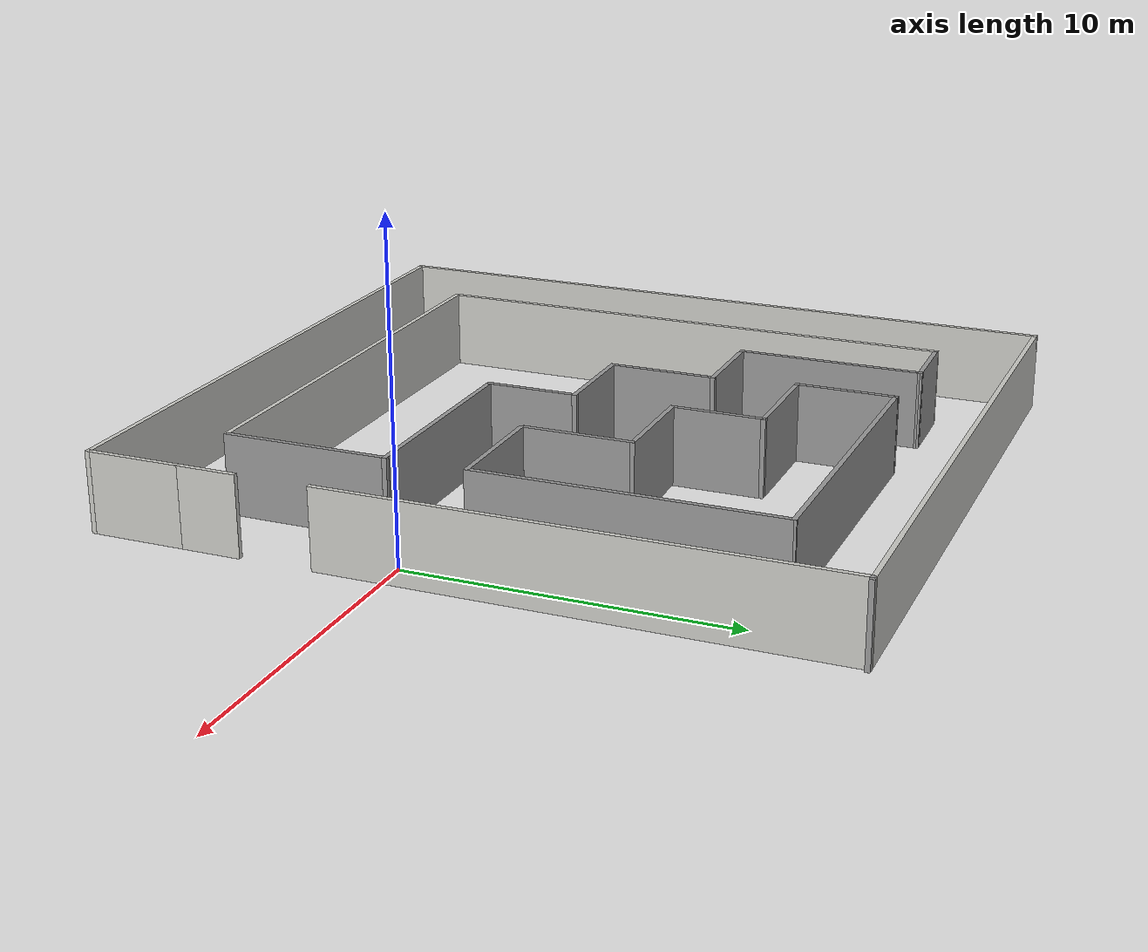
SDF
<?xml version='1.0'?>
<sdf version='1.7'>
  <model name='test1'>
    <pose>-9.33 2.1 0 0 -0 0</pose>
    <link name='Wall_11'>
      <collision name='Wall_11_Collision'>
        <geometry>
          <box>
            <size>15.5 0.15 2.5</size>
          </box>
        </geometry>
        <pose>0 0 1.25 0 -0 0</pose>
      </collision>
      <visual name='Wall_11_Visual'>
        <pose>0 0 1.25 0 -0 0</pose>
        <geometry>
          <box>
            <size>15.5 0.15 2.5</size>
          </box>
        </geometry>
        <material>
          <script>
            <uri>file://media/materials/scripts/gazebo.material</uri>
            <name>Gazebo/CeilingTiled</name>
          </script>
          <ambient>1 1 1 1</ambient>
        </material>
        <meta>
          <layer>0</layer>
        </meta>
      </visual>
      <pose>10.2288 3.47097 0 0 -0 1.5708</pose>
    </link>
    <link name='Wall_13'>
      <collision name='Wall_13_Collision'>
        <geometry>
          <box>
            <size>15.25 0.15 2.5</size>
          </box>
        </geometry>
        <pose>0 0 1.25 0 -0 0</pose>
      </collision>
      <visual name='Wall_13_Visual'>
        <pose>0 0 1.25 0 -0 0</pose>
        <geometry>
          <box>
            <size>15.25 0.15 2.5</size>
          </box>
        </geometry>
        <material>
          <script>
            <uri>file://media/materials/scripts/gazebo.material</uri>
            <name>Gazebo/CeilingTiled</name>
          </script>
          <ambient>1 1 1 1</ambient>
        </material>
        <meta>
          <layer>0</layer>
        </meta>
      </visual>
      <pose>0.040001 -8.45 0 0 -0 3.14159</pose>
    </link>
    <link name='Wall_14'>
      <collision name='Wall_14_Collision'>
        <geometry>
          <box>
            <size>17.25 0.15 2.5</size>
          </box>
        </geometry>
        <pose>0 0 1.25 0 -0 0</pose>
      </collision>
      <visual name='Wall_14_Visual'>
        <pose>0 0 1.25 0 -0 0</pose>
        <geometry>
          <box>
            <size>17.25 0.15 2.5</size>
          </box>
        </geometry>
        <material>
          <script>
            <uri>file://media/materials/scripts/gazebo.material</uri>
            <name>Gazebo/CeilingTiled</name>
          </script>
          <ambient>1 1 1 1</ambient>
        </material>
        <meta>
          <layer>0</layer>
        </meta>
      </visual>
      <pose>-7.51 0.100001 0 0 -0 1.5708</pose>
    </link>
    <link name='Wall_17'>
      <collision name='Wall_17_Collision'>
        <geometry>
          <box>
            <size>3 0.15 2.5</size>
          </box>
        </geometry>
        <pose>0 0 1.25 0 -0 0</pose>
      </collision>
      <visual name='Wall_17_Visual'>
        <pose>0 0 1.25 0 -0 0</pose>
        <geometry>
          <box>
            <size>3 0.15 2.5</size>
          </box>
        </geometry>
        <material>
          <script>
            <uri>file://media/materials/scripts/gazebo.material</uri>
            <name>Gazebo/CeilingTiled</name>
          </script>
          <ambient>1 1 1 1</ambient>
        </material>
        <meta>
          <layer>0</layer>
        </meta>
      </visual>
      <pose>10.25 -9.875 0 0 -0 -1.5708</pose>
    </link>
    <link name='Wall_18'>
      <collision name='Wall_18_Collision'>
        <geometry>
          <box>
            <size>20.75 0.15 2.5</size>
          </box>
        </geometry>
        <pose>0 0 1.25 0 -0 0</pose>
      </collision>
      <visual name='Wall_18_Visual'>
        <pose>0 0 1.25 0 -0 0</pose>
        <geometry>
          <box>
            <size>20.75 0.15 2.5</size>
          </box>
        </geometry>
        <material>
          <script>
            <uri>file://media/materials/scripts/gazebo.material</uri>
            <name>Gazebo/CeilingTiled</name>
          </script>
          <ambient>1 1 1 1</ambient>
        </material>
        <meta>
          <layer>0</layer>
        </meta>
      </visual>
      <pose>-0.05 -11.3 0 0 -0 3.14159</pose>
    </link>
    <link name='Wall_19'>
      <collision name='Wall_19_Collision'>
        <geometry>
          <box>
            <size>22.75 0.15 2.5</size>
          </box>
        </geometry>
        <pose>0 0 1.25 0 -0 0</pose>
      </collision>
      <visual name='Wall_19_Visual'>
        <pose>0 0 1.25 0 -0 0</pose>
        <geometry>
          <box>
            <size>22.75 0.15 2.5</size>
          </box>
        </geometry>
        <material>
          <script>
            <uri>file://media/materials/scripts/gazebo.material</uri>
            <name>Gazebo/CeilingTiled</name>
          </script>
          <ambient>1 1 1 1</ambient>
        </material>
        <meta>
          <layer>0</layer>
        </meta>
      </visual>
      <pose>-10.35 0 0 0 -0 1.5708</pose>
    </link>
    <link name='Wall_20'>
      <collision name='Wall_20_Collision'>
        <geometry>
          <box>
            <size>20.6399 0.15 2.5</size>
          </box>
        </geometry>
        <pose>0 0 1.25 0 -0 0</pose>
      </collision>
      <visual name='Wall_20_Visual'>
        <pose>0 0 1.25 0 -0 0</pose>
        <geometry>
          <box>
            <size>20.6399 0.15 2.5</size>
          </box>
        </geometry>
        <material>
          <script>
            <uri>file://media/materials/scripts/gazebo.material</uri>
            <name>Gazebo/CeilingTiled</name>
          </script>
          <ambient>1 1 1 1</ambient>
        </material>
        <meta>
          <layer>0</layer>
        </meta>
      </visual>
      <pose>-0.105039 11.3 0 0 -0 0</pose>
    </link>
    <link name='Wall_22'>
      <collision name='Wall_22_Collision'>
        <geometry>
          <box>
            <size>0.15 0.15 2.5</size>
          </box>
        </geometry>
        <pose>0 0 1.25 0 -0 0</pose>
      </collision>
      <visual name='Wall_22_Visual'>
        <pose>0 0 1.25 0 -0 0</pose>
        <geometry>
          <box>
            <size>0.15 0.15 2.5</size>
          </box>
        </geometry>
        <material>
          <script>
            <uri>file://media/materials/scripts/gazebo.material</uri>
            <name>Gazebo/Grey</name>
          </script>
          <ambient>1 1 1 1</ambient>
        </material>
        <meta>
          <layer>0</layer>
        </meta>
      </visual>
      <pose>10.2365 11.2741 0 0 -0 0</pose>
    </link>
    <link name='Wall_25'>
      <collision name='Wall_25_Collision'>
        <geometry>
          <box>
            <size>0.15 0.15 2.5</size>
          </box>
        </geometry>
        <pose>0 0 1.25 0 -0 0</pose>
      </collision>
      <visual name='Wall_25_Visual'>
        <pose>0 0 1.25 0 -0 0</pose>
        <geometry>
          <box>
            <size>0.15 0.15 2.5</size>
          </box>
        </geometry>
        <material>
          <script>
            <uri>file://media/materials/scripts/gazebo.material</uri>
            <name>Gazebo/Grey</name>
          </script>
          <ambient>1 1 1 1</ambient>
        </material>
        <meta>
          <layer>0</layer>
        </meta>
      </visual>
      <pose>10.35 11.3 0 0 -0 0</pose>
    </link>
    <link name='Wall_29'>
      <collision name='Wall_29_Collision'>
        <geometry>
          <box>
            <size>3.75 0.15 2.5</size>
          </box>
        </geometry>
        <pose>0 0 1.25 0 -0 0</pose>
      </collision>
      <visual name='Wall_29_Visual'>
        <pose>0 0 1.25 0 -0 0</pose>
        <geometry>
          <box>
            <size>3.75 0.15 2.5</size>
          </box>
        </geometry>
        <material>
          <script>
            <uri>file://media/materials/scripts/gazebo.material</uri>
            <name>Gazebo/Grey</name>
          </script>
          <ambient>1 1 1 1</ambient>
        </material>
        <meta>
          <layer>0</layer>
        </meta>
      </visual>
      <pose>5.73683 -0.855208 0 0 -0 0</pose>
    </link>
    <link name='Wall_31'>
      <collision name='Wall_31_Collision'>
        <geometry>
          <box>
            <size>3.5 0.15 2.5</size>
          </box>
        </geometry>
        <pose>0 0 1.25 0 -0 0</pose>
      </collision>
      <visual name='Wall_31_Visual'>
        <pose>0 0 1.25 0 -0 0</pose>
        <geometry>
          <box>
            <size>3.5 0.15 2.5</size>
          </box>
        </geometry>
        <material>
          <script>
            <uri>file://media/materials/scripts/gazebo.material</uri>
            <name>Gazebo/Grey</name>
          </script>
          <ambient>1 1 1 1</ambient>
        </material>
        <meta>
          <layer>0</layer>
        </meta>
      </visual>
      <pose>3.86274 0.911582 0 0 -0 1.5708</pose>
    </link>
    <link name='Wall_32'>
      <collision name='Wall_32_Collision'>
        <geometry>
          <box>
            <size>3.38175 0.15 2.5</size>
          </box>
        </geometry>
        <pose>0 0 1.25 0 -0 0</pose>
      </collision>
      <visual name='Wall_32_Visual'>
        <pose>0 0 1.25 0 -0 0</pose>
        <geometry>
          <box>
            <size>3.38175 0.15 2.5</size>
          </box>
        </geometry>
        <material>
          <script>
            <uri>file://media/materials/scripts/gazebo.material</uri>
            <name>Gazebo/Grey</name>
          </script>
          <ambient>1 1 1 1</ambient>
        </material>
        <meta>
          <layer>0</layer>
        </meta>
      </visual>
      <pose>2.24692 2.59973 0 0 -0 3.14159</pose>
    </link>
    <link name='Wall_33'>
      <collision name='Wall_33_Collision'>
        <geometry>
          <box>
            <size>3 0.15 2.5</size>
          </box>
        </geometry>
        <pose>0 0 1.25 0 -0 0</pose>
      </collision>
      <visual name='Wall_33_Visual'>
        <pose>0 0 1.25 0 -0 0</pose>
        <geometry>
          <box>
            <size>3 0.15 2.5</size>
          </box>
        </geometry>
        <material>
          <script>
            <uri>file://media/materials/scripts/gazebo.material</uri>
            <name>Gazebo/Grey</name>
          </script>
          <ambient>1 1 1 1</ambient>
        </material>
        <meta>
          <layer>0</layer>
        </meta>
      </visual>
      <pose>0.631094 4.02473 0 0 -0 1.5708</pose>
    </link>
    <link name='Wall_34'>
      <collision name='Wall_34_Collision'>
        <geometry>
          <box>
            <size>3.5 0.15 2.5</size>
          </box>
        </geometry>
        <pose>0 0 1.25 0 -0 0</pose>
      </collision>
      <visual name='Wall_34_Visual'>
        <pose>0 0 1.25 0 -0 0</pose>
        <geometry>
          <box>
            <size>3.5 0.15 2.5</size>
          </box>
        </geometry>
        <material>
          <script>
            <uri>file://media/materials/scripts/gazebo.material</uri>
            <name>Gazebo/Grey</name>
          </script>
          <ambient>1 1 1 1</ambient>
        </material>
        <meta>
          <layer>0</layer>
        </meta>
      </visual>
      <pose>-1.04391 5.44973 0 0 -0 3.14159</pose>
    </link>
    <link name='Wall_35'>
      <collision name='Wall_35_Collision'>
        <geometry>
          <box>
            <size>3.25 0.15 2.5</size>
          </box>
        </geometry>
        <pose>0 0 1.25 0 -0 0</pose>
      </collision>
      <visual name='Wall_35_Visual'>
        <pose>0 0 1.25 0 -0 0</pose>
        <geometry>
          <box>
            <size>3.25 0.15 2.5</size>
          </box>
        </geometry>
        <material>
          <script>
            <uri>file://media/materials/scripts/gazebo.material</uri>
            <name>Gazebo/Grey</name>
          </script>
          <ambient>1 1 1 1</ambient>
        </material>
        <meta>
          <layer>0</layer>
        </meta>
      </visual>
      <pose>-2.71891 6.99973 0 0 -0 1.5708</pose>
    </link>
    <link name='Wall_37'>
      <collision name='Wall_37_Collision'>
        <geometry>
          <box>
            <size>9.5 0.15 2.5</size>
          </box>
        </geometry>
        <pose>0 0 1.25 0 -0 0</pose>
      </collision>
      <visual name='Wall_37_Visual'>
        <pose>0 0 1.25 0 -0 0</pose>
        <geometry>
          <box>
            <size>9.5 0.15 2.5</size>
          </box>
        </geometry>
        <material>
          <script>
            <uri>file://media/materials/scripts/gazebo.material</uri>
            <name>Gazebo/Grey</name>
          </script>
          <ambient>1 1 1 1</ambient>
        </material>
        <meta>
          <layer>0</layer>
        </meta>
      </visual>
      <pose>7.53683 3.81979 0 0 -0 1.5708</pose>
    </link>
    <link name='Wall_39'>
      <collision name='Wall_39_Collision'>
        <geometry>
          <box>
            <size>5.25 0.15 2.5</size>
          </box>
        </geometry>
        <pose>0 0 1.25 0 -0 0</pose>
      </collision>
      <visual name='Wall_39_Visual'>
        <pose>0 0 1.25 0 -0 0</pose>
        <geometry>
          <box>
            <size>5.25 0.15 2.5</size>
          </box>
        </geometry>
        <material>
          <script>
            <uri>file://media/materials/scripts/gazebo.material</uri>
            <name>Gazebo/Grey</name>
          </script>
          <ambient>1 1 1 1</ambient>
        </material>
        <meta>
          <layer>0</layer>
        </meta>
      </visual>
      <pose>7.59 -5.9 0 0 -0 1.5708</pose>
    </link>
    <link name='Wall_4'>
      <collision name='Wall_4_Collision'>
        <geometry>
          <box>
            <size>2 0.15 2.5</size>
          </box>
        </geometry>
        <pose>0 0 1.25 0 -0 0</pose>
      </collision>
      <visual name='Wall_4_Visual'>
        <pose>0 0 1.25 0 -0 0</pose>
        <geometry>
          <box>
            <size>2 0.15 2.5</size>
          </box>
        </geometry>
        <material>
          <script>
            <uri>file://media/materials/scripts/gazebo.material</uri>
            <name>Gazebo/CeilingTiled</name>
          </script>
          <ambient>1 1 1 1</ambient>
        </material>
        <meta>
          <layer>0</layer>
        </meta>
      </visual>
      <pose>10.25 -7.525 0 0 -0 -1.5708</pose>
    </link>
    <link name='Wall_40'>
      <collision name='Wall_40_Collision'>
        <geometry>
          <box>
            <size>7 0.15 2.5</size>
          </box>
        </geometry>
        <pose>0 0 1.25 0 -0 0</pose>
      </collision>
      <visual name='Wall_40_Visual'>
        <pose>0 0 1.25 0 -0 0</pose>
        <geometry>
          <box>
            <size>7 0.15 2.5</size>
          </box>
        </geometry>
        <material>
          <script>
            <uri>file://media/materials/scripts/gazebo.material</uri>
            <name>Gazebo/Grey</name>
          </script>
          <ambient>1 1 1 1</ambient>
        </material>
        <meta>
          <layer>0</layer>
        </meta>
      </visual>
      <pose>4.165 -3.35 0 0 -0 3.14159</pose>
    </link>
    <link name='Wall_41'>
      <collision name='Wall_41_Collision'>
        <geometry>
          <box>
            <size>3 0.15 2.5</size>
          </box>
        </geometry>
        <pose>0 0 1.25 0 -0 0</pose>
      </collision>
      <visual name='Wall_41_Visual'>
        <pose>0 0 1.25 0 -0 0</pose>
        <geometry>
          <box>
            <size>3 0.15 2.5</size>
          </box>
        </geometry>
        <material>
          <script>
            <uri>file://media/materials/scripts/gazebo.material</uri>
            <name>Gazebo/Grey</name>
          </script>
          <ambient>1 1 1 1</ambient>
        </material>
        <meta>
          <layer>0</layer>
        </meta>
      </visual>
      <pose>0.74 -1.925 0 0 -0 1.5708</pose>
    </link>
    <link name='Wall_42'>
      <collision name='Wall_42_Collision'>
        <geometry>
          <box>
            <size>3.25 0.15 2.5</size>
          </box>
        </geometry>
        <pose>0 0 1.25 0 -0 0</pose>
      </collision>
      <visual name='Wall_42_Visual'>
        <pose>0 0 1.25 0 -0 0</pose>
        <geometry>
          <box>
            <size>3.25 0.15 2.5</size>
          </box>
        </geometry>
        <material>
          <script>
            <uri>file://media/materials/scripts/gazebo.material</uri>
            <name>Gazebo/Grey</name>
          </script>
          <ambient>1 1 1 1</ambient>
        </material>
        <meta>
          <layer>0</layer>
        </meta>
      </visual>
      <pose>-0.81 -0.499999 0 0 -0 3.14159</pose>
    </link>
    <link name='Wall_43'>
      <collision name='Wall_43_Collision'>
        <geometry>
          <box>
            <size>3.5 0.15 2.5</size>
          </box>
        </geometry>
        <pose>0 0 1.25 0 -0 0</pose>
      </collision>
      <visual name='Wall_43_Visual'>
        <pose>0 0 1.25 0 -0 0</pose>
        <geometry>
          <box>
            <size>3.5 0.15 2.5</size>
          </box>
        </geometry>
        <material>
          <script>
            <uri>file://media/materials/scripts/gazebo.material</uri>
            <name>Gazebo/Grey</name>
          </script>
          <ambient>1 1 1 1</ambient>
        </material>
        <meta>
          <layer>0</layer>
        </meta>
      </visual>
      <pose>-2.36 1.175 0 0 -0 1.5708</pose>
    </link>
    <link name='Wall_44'>
      <collision name='Wall_44_Collision'>
        <geometry>
          <box>
            <size>3 0.15 2.5</size>
          </box>
        </geometry>
        <pose>0 0 1.25 0 -0 0</pose>
      </collision>
      <visual name='Wall_44_Visual'>
        <pose>0 0 1.25 0 -0 0</pose>
        <geometry>
          <box>
            <size>3 0.15 2.5</size>
          </box>
        </geometry>
        <material>
          <script>
            <uri>file://media/materials/scripts/gazebo.material</uri>
            <name>Gazebo/Grey</name>
          </script>
          <ambient>1 1 1 1</ambient>
        </material>
        <meta>
          <layer>0</layer>
        </meta>
      </visual>
      <pose>-3.785 2.85 0 0 -0 3.14159</pose>
    </link>
    <link name='Wall_45'>
      <collision name='Wall_45_Collision'>
        <geometry>
          <box>
            <size>6 0.15 2.5</size>
          </box>
        </geometry>
        <pose>0 0 1.25 0 -0 0</pose>
      </collision>
      <visual name='Wall_45_Visual'>
        <pose>0 0 1.25 0 -0 0</pose>
        <geometry>
          <box>
            <size>6 0.15 2.5</size>
          </box>
        </geometry>
        <material>
          <script>
            <uri>file://media/materials/scripts/gazebo.material</uri>
            <name>Gazebo/Grey</name>
          </script>
          <ambient>1 1 1 1</ambient>
        </material>
        <meta>
          <layer>0</layer>
        </meta>
      </visual>
      <pose>-5.21 5.775 0 0 -0 1.5708</pose>
    </link>
    <link name='Wall_47'>
      <collision name='Wall_47_Collision'>
        <geometry>
          <box>
            <size>2.45054 0.15 2.5</size>
          </box>
        </geometry>
        <pose>0 0 1.25 0 -0 0</pose>
      </collision>
      <visual name='Wall_47_Visual'>
        <pose>0 0 1.25 0 -0 0</pose>
        <geometry>
          <box>
            <size>2.45054 0.15 2.5</size>
          </box>
        </geometry>
        <material>
          <script>
            <uri>file://media/materials/scripts/gazebo.material</uri>
            <name>Gazebo/Grey</name>
          </script>
          <ambient>1 1 1 1</ambient>
        </material>
        <meta>
          <layer>0</layer>
        </meta>
      </visual>
      <pose>-6.36 8.675 0 0 -0 0.021736</pose>
    </link>
    <link name='Wall_49'>
      <collision name='Wall_49_Collision'>
        <geometry>
          <box>
            <size>10.4059 0.15 2.5</size>
          </box>
        </geometry>
        <pose>0 0 1.25 0 -0 0</pose>
      </collision>
      <visual name='Wall_49_Visual'>
        <pose>0 0 1.25 0 -0 0</pose>
        <geometry>
          <box>
            <size>10.4059 0.15 2.5</size>
          </box>
        </geometry>
        <material>
          <script>
            <uri>file://media/materials/scripts/gazebo.material</uri>
            <name>Gazebo/Grey</name>
          </script>
          <ambient>1 1 1 1</ambient>
        </material>
        <meta>
          <layer>0</layer>
        </meta>
      </visual>
      <pose>2.40896 8.52226 0 0 -0 3.13624</pose>
    </link>
    <static>1</static>
  </model>
</sdf>
